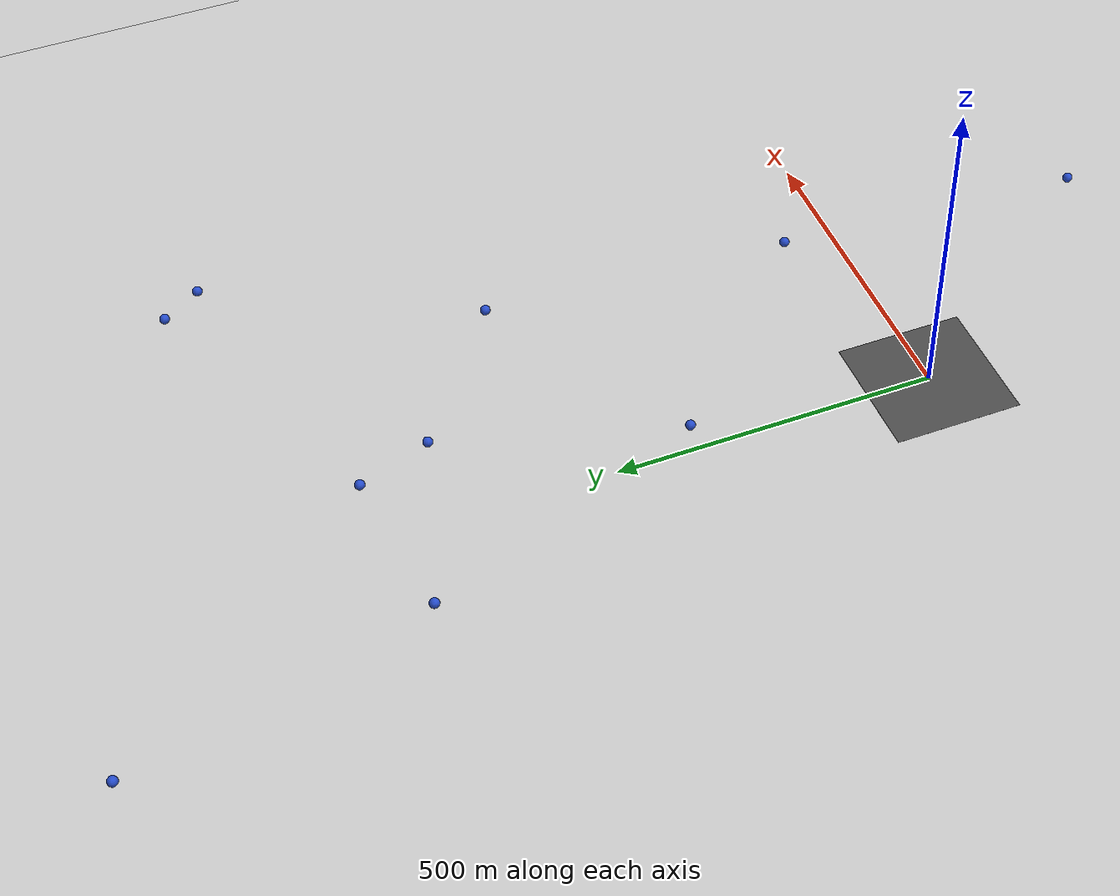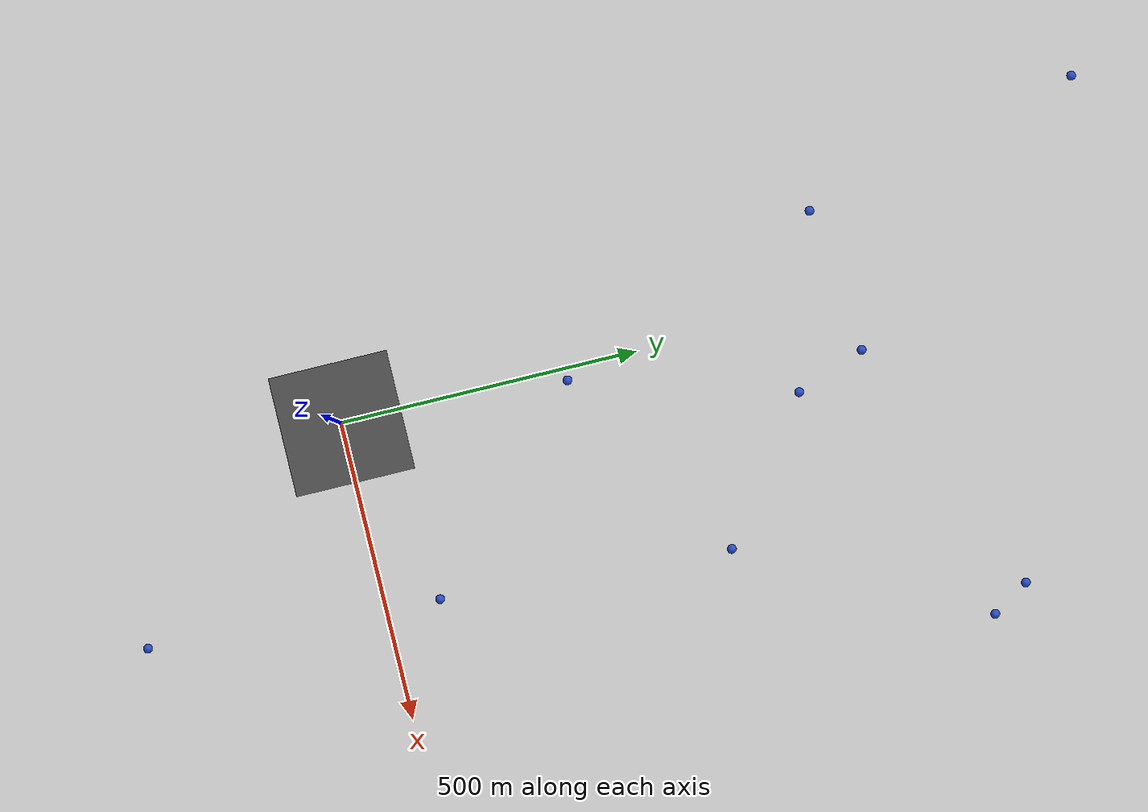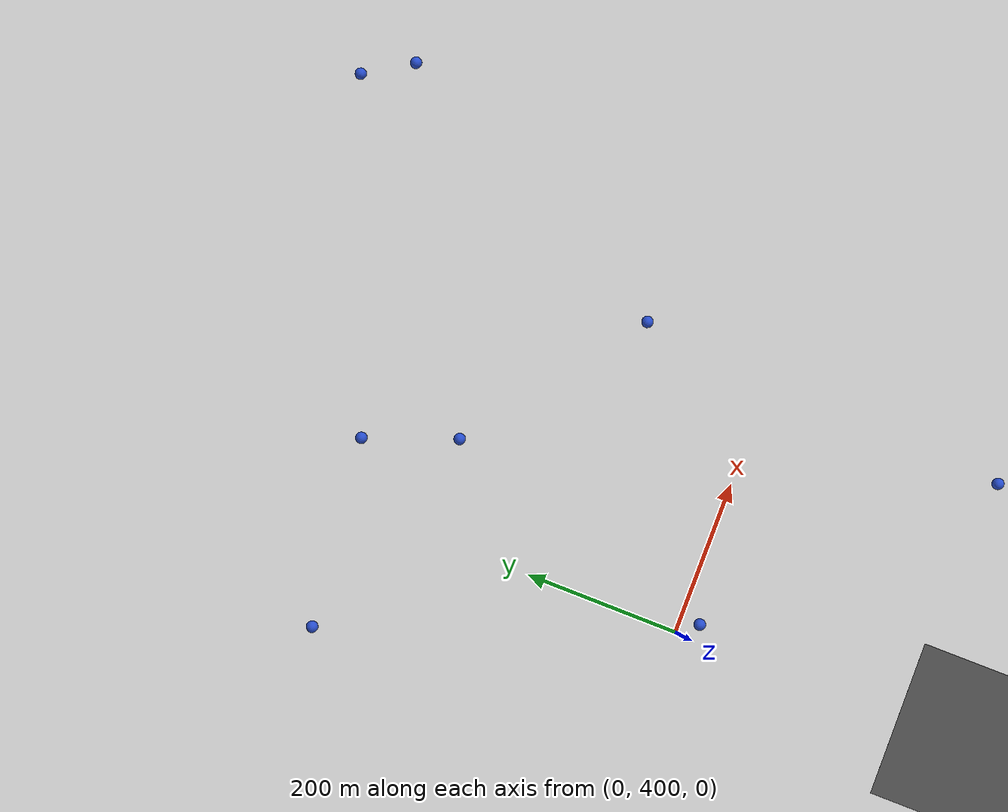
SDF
<sdf version='1.7'>
<world name='default'>
<light name='sun' type='directional'>
	<cast_shadows>1</cast_shadows>
	<pose>0 0 10 0 -0 0</pose>
	<diffuse>0.8 0.8 0.8 1</diffuse>
	<specular>0.2 0.2 0.2 1</specular>
	<attenuation>
		<range>1000</range>
		<constant>0.9</constant>
		<linear>0.01</linear>
		<quadratic>0.001</quadratic>
	</attenuation>
	<direction>-0.5 0.1 -0.9</direction>
	<spot>
		<inner_angle>0</inner_angle>
		<outer_angle>0</outer_angle>
		<falloff>0</falloff>
	</spot>
</light>
<model name='ground_plane'>
	<static>1</static>
	<link name='link'>
		<collision name='collision'>
			<geometry>
				<plane>
					<normal>0 0 1</normal>
					<size>100 100</size>
				</plane>
			</geometry>
			<surface>
				<contact>
					<collide_bitmask>65535</collide_bitmask>
					<ode/>
				</contact>
				<friction>
					<ode>
						<mu>100</mu>
						<mu2>50</mu2>
					</ode>
					<torsional>
						<ode/>
					</torsional>
				</friction>
				<bounce/>
			</surface>
			<max_contacts>10</max_contacts>
		</collision>
		<visual name='visual'>
			<cast_shadows>0</cast_shadows>
			<geometry>
				<plane>
					<normal>0 0 1</normal>
					<size>100 100</size>
				</plane>
			</geometry>
			<material>
				<script>
					<uri>file://media/materials/scripts/gazebo.material</uri>
					<name>Gazebo/Grey</name>
				</script>
			</material>
		</visual>
		<self_collide>0</self_collide>
		<enable_wind>0</enable_wind>
		<kinematic>0</kinematic>
	</link>
</model>
<model name='asphalt_plane'>
	<static>1</static>
	<link name='link'>
		<collision name='collision'>
			<geometry>
				<box>
					<size>200 200 0.1</size>
				</box>
			</geometry>
			<max_contacts>10</max_contacts>
			<surface>
				<contact>
					<ode/>
				</contact>
				<bounce/>
				<friction>
					<torsional>
						<ode/>
					</torsional>
					<ode/>
				</friction>
			</surface>
		</collision>
		<visual name='visual'>
			<cast_shadows>0</cast_shadows>
			<geometry>
				<box>
					<size>200 200 0.1</size>
				</box>
			</geometry>
			<material>
				<script>
					<uri>model://asphalt_plane/materials/scripts</uri>
					<uri>model://asphalt_plane/materials/textures</uri>
					<name>vrc/asphalt</name>
				</script>
			</material>
		</visual>
		<self_collide>0</self_collide>
		<enable_wind>0</enable_wind>
		<kinematic>0</kinematic>
	</link>
</model>
<physics name='default_physics' default='0' type='ode'>
	<ode>
		<solver>
			<type>quick</type>
			<iters>10</iters>
			<sor>1.3</sor>
			<use_dynamic_moi_rescaling>0</use_dynamic_moi_rescaling>
		</solver>
		<constraints>
			<cfm>0</cfm>
			<erp>0.2</erp>
			<contact_max_correcting_vel>100</contact_max_correcting_vel>
			<contact_surface_layer>0.001</contact_surface_layer>
		</constraints>
	</ode>
	<max_step_size>0.004</max_step_size>
	<real_time_factor>1</real_time_factor>
	<real_time_update_rate>250</real_time_update_rate>
</physics>
<gravity>0 0 -9.8066</gravity>
<magnetic_field>6e-06 2.3e-05 -4.2e-05</magnetic_field>
<atmosphere type='adiabatic'/>
<scene>
	<ambient>0.4 0.4 0.4 1</ambient>
	<background>0.7 0.7 0.7 1</background>
	<shadows>1</shadows>
</scene>
<wind/>
<spherical_coordinates>
	<surface_model>EARTH_WGS84</surface_model>
	<world_frame_orientation>ENU</world_frame_orientation>
	<latitude_deg>0</latitude_deg>
	<longitude_deg>0</longitude_deg>
	<elevation>0</elevation>
	<heading_deg>0</heading_deg>
</spherical_coordinates>
<model name='user_way_Point_1'>
	<static>1</static>
	<pose>284.44353722279936 -391.59383451942523 36.33389027787667 0 -0 0</pose>
<link name='link'>
<gravity>0</gravity>
	<inertial>
	<mass>1</mass>
	<inertia>
		<ixx>0.0001</ixx>
		<ixy>0</ixy>
		<ixz>0</ixz>
		<iyy>0.0001</iyy>
		<iyz>0</iyz>
		<izz>0.0001</izz>
	</inertia>
<pose> 0 0 0 0 -0 0</pose>
</inertial>
<collision name='collision'>
	<geometry>
		<sphere>
			<radius>7.62</radius>
		</sphere>
	</geometry>
	<surface>
		<contact>
			<collide_without_contact>1</collide_without_contact>
		</contact>
	</surface>
</collision>
<visual name='visual'>
	<geometry>
		<sphere>
			<radius>7.62</radius>
		</sphere>
	</geometry>
	<material>
		<script>
			<name>Gazebo/Blue</name>
			<uri>file://media/materials/scripts/gazebo.material</uri>
		</script>
	</material>
</visual>
<self_collide>0</self_collide>
<enable_wind>0</enable_wind>
<kinematic>0</kinematic>
</link>
</model>
<model name='user_way_Point_2'>
	<static>1</static>
	<pose>318.9397783356925 91.17305177082645 34.78298594198326 0 -0 0</pose>
<link name='link'>
<gravity>0</gravity>
	<inertial>
	<mass>1</mass>
	<inertia>
		<ixx>0.0001</ixx>
		<ixy>0</ixy>
		<ixz>0</ixz>
		<iyy>0.0001</iyy>
		<iyz>0</iyz>
		<izz>0.0001</izz>
	</inertia>
<pose> 0 0 0 0 -0 0</pose>
</inertial>
<collision name='collision'>
	<geometry>
		<sphere>
			<radius>7.62</radius>
		</sphere>
	</geometry>
	<surface>
		<contact>
			<collide_without_contact>1</collide_without_contact>
		</contact>
	</surface>
</collision>
<visual name='visual'>
	<geometry>
		<sphere>
			<radius>7.62</radius>
		</sphere>
	</geometry>
	<material>
		<script>
			<name>Gazebo/Blue</name>
			<uri>file://media/materials/scripts/gazebo.material</uri>
		</script>
	</material>
</visual>
<self_collide>0</self_collide>
<enable_wind>0</enable_wind>
<kinematic>0</kinematic>
</link>
</model>
<model name='user_way_Point_3'>
	<static>1</static>
	<pose>352.2528306080059 574.023026610213 34.75892837135494 0 -0 0</pose>
<link name='link'>
<gravity>0</gravity>
	<inertial>
	<mass>1</mass>
	<inertia>
		<ixx>0.0001</ixx>
		<ixy>0</ixy>
		<ixz>0</ixz>
		<iyy>0.0001</iyy>
		<iyz>0</iyz>
		<izz>0.0001</izz>
	</inertia>
<pose> 0 0 0 0 -0 0</pose>
</inertial>
<collision name='collision'>
	<geometry>
		<sphere>
			<radius>7.62</radius>
		</sphere>
	</geometry>
	<surface>
		<contact>
			<collide_without_contact>1</collide_without_contact>
		</contact>
	</surface>
</collision>
<visual name='visual'>
	<geometry>
		<sphere>
			<radius>7.62</radius>
		</sphere>
	</geometry>
	<material>
		<script>
			<name>Gazebo/Blue</name>
			<uri>file://media/materials/scripts/gazebo.material</uri>
		</script>
	</material>
</visual>
<self_collide>0</self_collide>
<enable_wind>0</enable_wind>
<kinematic>0</kinematic>
</link>
</model>
<model name='user_way_Point_4'>
	<static>1</static>
	<pose>519.39506341416 1028.2447062596884 31.839852481603227 0 -0 0</pose>
<link name='link'>
<gravity>0</gravity>
	<inertial>
	<mass>1</mass>
	<inertia>
		<ixx>0.0001</ixx>
		<ixy>0</ixy>
		<ixz>0</ixz>
		<iyy>0.0001</iyy>
		<iyz>0</iyz>
		<izz>0.0001</izz>
	</inertia>
<pose> 0 0 0 0 -0 0</pose>
</inertial>
<collision name='collision'>
	<geometry>
		<sphere>
			<radius>7.62</radius>
		</sphere>
	</geometry>
	<surface>
		<contact>
			<collide_without_contact>1</collide_without_contact>
		</contact>
	</surface>
</collision>
<visual name='visual'>
	<geometry>
		<sphere>
			<radius>7.62</radius>
		</sphere>
	</geometry>
	<material>
		<script>
			<name>Gazebo/Blue</name>
			<uri>file://media/materials/scripts/gazebo.material</uri>
		</script>
	</material>
</visual>
<self_collide>0</self_collide>
<enable_wind>0</enable_wind>
<kinematic>0</kinematic>
</link>
</model>
<model name='user_way_Point_5'>
	<static>1</static>
	<pose>129.11030920716513 742.0076207274598 34.466110413820346 0 -0 0</pose>
<link name='link'>
<gravity>0</gravity>
	<inertial>
	<mass>1</mass>
	<inertia>
		<ixx>0.0001</ixx>
		<ixy>0</ixy>
		<ixz>0</ixz>
		<iyy>0.0001</iyy>
		<iyz>0</iyz>
		<izz>0.0001</izz>
	</inertia>
<pose> 0 0 0 0 -0 0</pose>
</inertial>
<collision name='collision'>
	<geometry>
		<sphere>
			<radius>7.62</radius>
		</sphere>
	</geometry>
	<surface>
		<contact>
			<collide_without_contact>1</collide_without_contact>
		</contact>
	</surface>
</collision>
<visual name='visual'>
	<geometry>
		<sphere>
			<radius>7.62</radius>
		</sphere>
	</geometry>
	<material>
		<script>
			<name>Gazebo/Blue</name>
			<uri>file://media/materials/scripts/gazebo.material</uri>
		</script>
	</material>
</visual>
<self_collide>0</self_collide>
<enable_wind>0</enable_wind>
<kinematic>0</kinematic>
</link>
</model>
<model name='user_way_Point_6'>
	<static>1</static>
	<pose>557.5534375808619 967.1527818422243 33.88726715164897 0 -0 0</pose>
<link name='link'>
<gravity>0</gravity>
	<inertial>
	<mass>1</mass>
	<inertia>
		<ixx>0.0001</ixx>
		<ixy>0</ixy>
		<ixz>0</ixz>
		<iyy>0.0001</iyy>
		<iyz>0</iyz>
		<izz>0.0001</izz>
	</inertia>
<pose> 0 0 0 0 -0 0</pose>
</inertial>
<collision name='collision'>
	<geometry>
		<sphere>
			<radius>7.62</radius>
		</sphere>
	</geometry>
	<surface>
		<contact>
			<collide_without_contact>1</collide_without_contact>
		</contact>
	</surface>
</collision>
<visual name='visual'>
	<geometry>
		<sphere>
			<radius>7.62</radius>
		</sphere>
	</geometry>
	<material>
		<script>
			<name>Gazebo/Blue</name>
			<uri>file://media/materials/scripts/gazebo.material</uri>
		</script>
	</material>
</visual>
<self_collide>0</self_collide>
<enable_wind>0</enable_wind>
<kinematic>0</kinematic>
</link>
</model>
<model name='user_way_Point_7'>
	<static>1</static>
	<pose>86.1063164777688 857.6472150519695 36.02549560992099 0 -0 0</pose>
<link name='link'>
<gravity>0</gravity>
	<inertial>
	<mass>1</mass>
	<inertia>
		<ixx>0.0001</ixx>
		<ixy>0</ixy>
		<ixz>0</ixz>
		<iyy>0.0001</iyy>
		<iyz>0</iyz>
		<izz>0.0001</izz>
	</inertia>
<pose> 0 0 0 0 -0 0</pose>
</inertial>
<collision name='collision'>
	<geometry>
		<sphere>
			<radius>7.62</radius>
		</sphere>
	</geometry>
	<surface>
		<contact>
			<collide_without_contact>1</collide_without_contact>
		</contact>
	</surface>
</collision>
<visual name='visual'>
	<geometry>
		<sphere>
			<radius>7.62</radius>
		</sphere>
	</geometry>
	<material>
		<script>
			<name>Gazebo/Blue</name>
			<uri>file://media/materials/scripts/gazebo.material</uri>
		</script>
	</material>
</visual>
<self_collide>0</self_collide>
<enable_wind>0</enable_wind>
<kinematic>0</kinematic>
</link>
</model>
<model name='user_way_Point_8'>
	<static>1</static>
	<pose>20.246439708943143 378.15129660544284 30.82297556584672 0 -0 0</pose>
<link name='link'>
<gravity>0</gravity>
	<inertial>
	<mass>1</mass>
	<inertia>
		<ixx>0.0001</ixx>
		<ixy>0</ixy>
		<ixz>0</ixz>
		<iyy>0.0001</iyy>
		<iyz>0</iyz>
		<izz>0.0001</izz>
	</inertia>
<pose> 0 0 0 0 -0 0</pose>
</inertial>
<collision name='collision'>
	<geometry>
		<sphere>
			<radius>7.62</radius>
		</sphere>
	</geometry>
	<surface>
		<contact>
			<collide_without_contact>1</collide_without_contact>
		</contact>
	</surface>
</collision>
<visual name='visual'>
	<geometry>
		<sphere>
			<radius>7.62</radius>
		</sphere>
	</geometry>
	<material>
		<script>
			<name>Gazebo/Blue</name>
			<uri>file://media/materials/scripts/gazebo.material</uri>
		</script>
	</material>
</visual>
<self_collide>0</self_collide>
<enable_wind>0</enable_wind>
<kinematic>0</kinematic>
</link>
</model>
<model name='user_way_Point_9'>
	<static>1</static>
	<pose>-155.6175462016873 829.0678268791812 37.194861339842696 0 -0 0</pose>
<link name='link'>
<gravity>0</gravity>
	<inertial>
	<mass>1</mass>
	<inertia>
		<ixx>0.0001</ixx>
		<ixy>0</ixy>
		<ixz>0</ixz>
		<iyy>0.0001</iyy>
		<iyz>0</iyz>
		<izz>0.0001</izz>
	</inertia>
<pose> 0 0 0 0 -0 0</pose>
</inertial>
<collision name='collision'>
	<geometry>
		<sphere>
			<radius>7.62</radius>
		</sphere>
	</geometry>
	<surface>
		<contact>
			<collide_without_contact>1</collide_without_contact>
		</contact>
	</surface>
</collision>
<visual name='visual'>
	<geometry>
		<sphere>
			<radius>7.62</radius>
		</sphere>
	</geometry>
	<material>
		<script>
			<name>Gazebo/Blue</name>
			<uri>file://media/materials/scripts/gazebo.material</uri>
		</script>
	</material>
</visual>
<self_collide>0</self_collide>
<enable_wind>0</enable_wind>
<kinematic>0</kinematic>
</link>
</model>
<model name='user_way_Point_10'>
	<static>1</static>
	<pose>-270.09424051996194 1299.332592328978 31.802299913373155 0 -0 0</pose>
<link name='link'>
<gravity>0</gravity>
	<inertial>
	<mass>1</mass>
	<inertia>
		<ixx>0.0001</ixx>
		<ixy>0</ixy>
		<ixz>0</ixz>
		<iyy>0.0001</iyy>
		<iyz>0</iyz>
		<izz>0.0001</izz>
	</inertia>
<pose> 0 0 0 0 -0 0</pose>
</inertial>
<collision name='collision'>
	<geometry>
		<sphere>
			<radius>7.62</radius>
		</sphere>
	</geometry>
	<surface>
		<contact>
			<collide_without_contact>1</collide_without_contact>
		</contact>
	</surface>
</collision>
<visual name='visual'>
	<geometry>
		<sphere>
			<radius>7.62</radius>
		</sphere>
	</geometry>
	<material>
		<script>
			<name>Gazebo/Blue</name>
			<uri>file://media/materials/scripts/gazebo.material</uri>
		</script>
	</material>
</visual>
<self_collide>0</self_collide>
<enable_wind>0</enable_wind>
<kinematic>0</kinematic>
</link>
</model>
</world>
</sdf>
